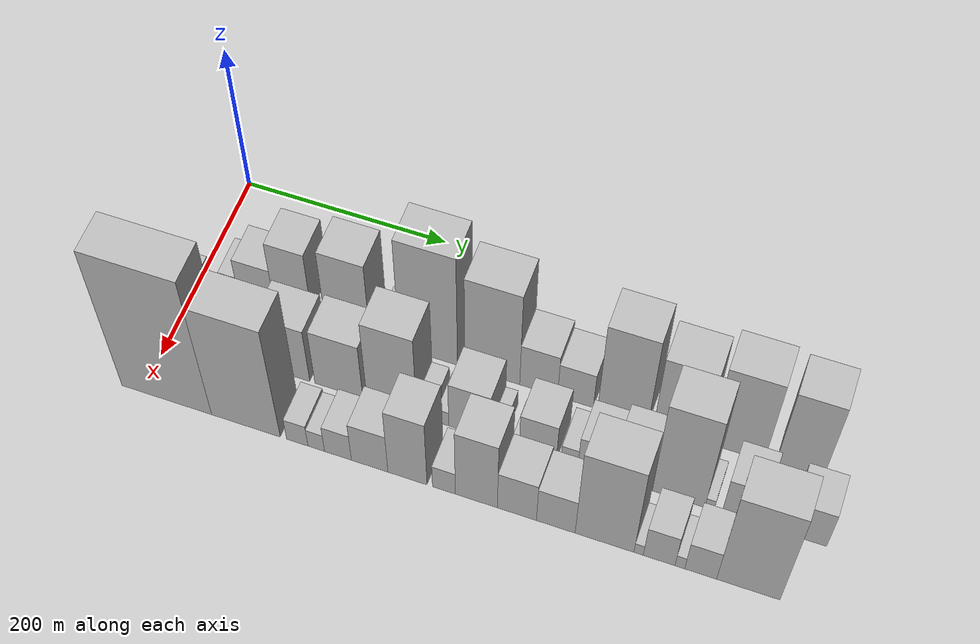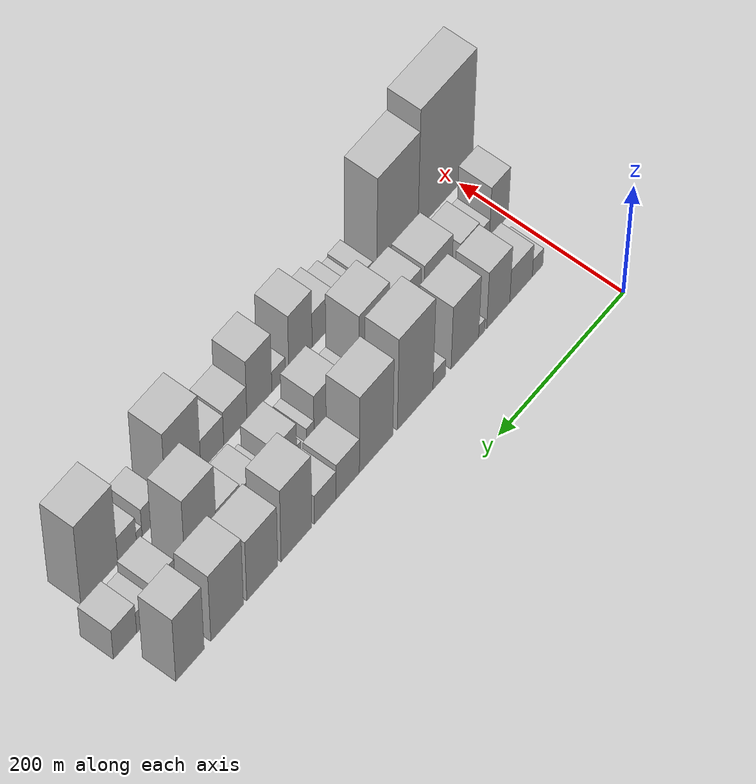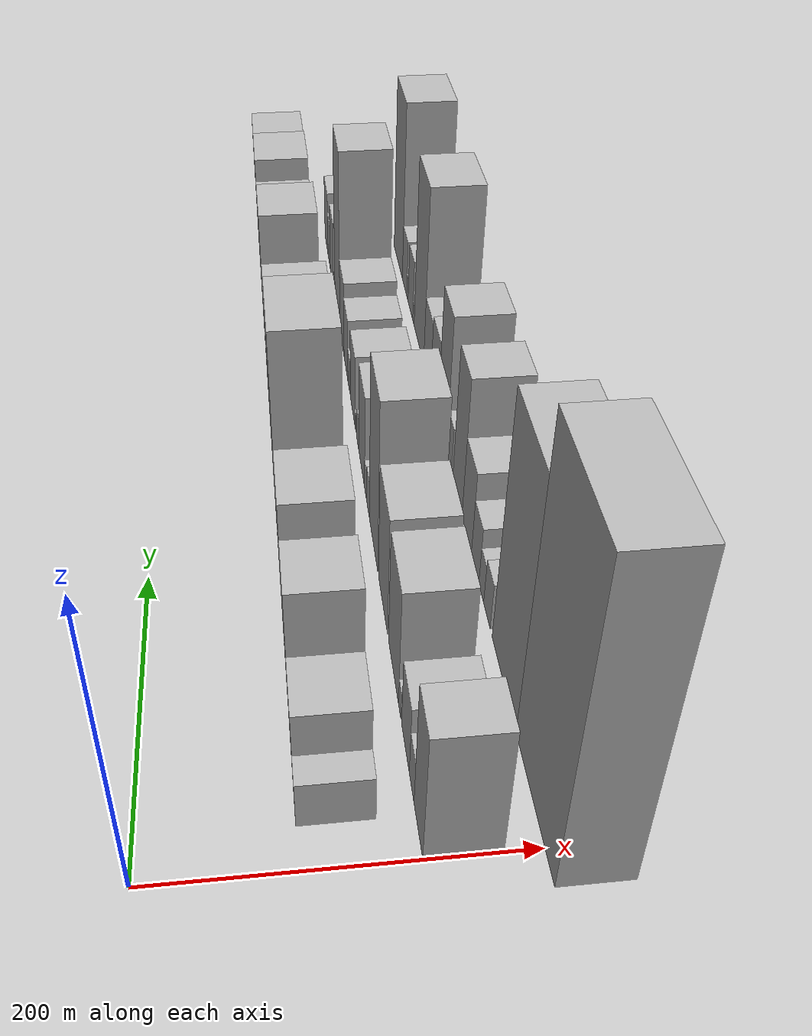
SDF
<sdf version="1.6">
 <world name="default">
  <model name="building_19">
   <static>1</static>
   <pose>100.0000 32.5690 0 0.000000 0.000000 0.000000</pose>
   <link name="link">
    <pose>0 0 16.50 0 0 0</pose>
    <collision name="collision"><geometry><box><size>40.0000 17.1172 33.0000</size></box></geometry></collision>
    <visual name="visual">
     <cast_shadows>0</cast_shadows>
     <geometry><box><size>40.0000 17.1172 33.0000</size></box></geometry>
     <material>
      <script>
       <uri>model://HANNAS_wall/materials/scripts</uri>
       <uri>model://HANNAS_wall/materials/textures</uri>
       <name>vrc/HANNAS_wall</name>
      </script>
     </material>
    </visual>
   </link>
  </model>
  <model name="building_20">
   <static>1</static>
   <pose>100.0000 59.2023 0 0.000000 0.000000 0.000000</pose>
   <link name="link">
    <pose>0 0 31.50 0 0 0</pose>
    <collision name="collision"><geometry><box><size>40.0000 36.1495 63.0000</size></box></geometry></collision>
    <visual name="visual">
     <cast_shadows>0</cast_shadows>
     <geometry><box><size>40.0000 36.1495 63.0000</size></box></geometry>
     <material>
      <script>
       <uri>model://HANNAS_wall/materials/scripts</uri>
       <uri>model://HANNAS_wall/materials/textures</uri>
       <name>vrc/HANNAS_wall</name>
      </script>
     </material>
    </visual>
   </link>
  </model>
  <model name="building_21">
   <static>1</static>
   <pose>100.0000 95.7717 0 0.000000 0.000000 0.000000</pose>
   <link name="link">
    <pose>0 0 54.00 0 0 0</pose>
    <collision name="collision"><geometry><box><size>40.0000 36.9893 108.0000</size></box></geometry></collision>
    <visual name="visual">
     <cast_shadows>0</cast_shadows>
     <geometry><box><size>40.0000 36.9893 108.0000</size></box></geometry>
     <material>
      <script>
       <uri>model://HANNAS_wall/materials/scripts</uri>
       <uri>model://HANNAS_wall/materials/textures</uri>
       <name>vrc/HANNAS_wall</name>
      </script>
     </material>
    </visual>
   </link>
  </model>
  <model name="building_22">
   <static>1</static>
   <pose>100.0000 122.1732 0 0.000000 0.000000 0.000000</pose>
   <link name="link">
    <pose>0 0 12.00 0 0 0</pose>
    <collision name="collision"><geometry><box><size>40.0000 9.8138 24.0000</size></box></geometry></collision>
    <visual name="visual">
     <cast_shadows>0</cast_shadows>
     <geometry><box><size>40.0000 9.8138 24.0000</size></box></geometry>
     <material>
      <script>
       <uri>model://HANNAS_wall/materials/scripts</uri>
       <uri>model://HANNAS_wall/materials/textures</uri>
       <name>vrc/HANNAS_wall</name>
      </script>
     </material>
    </visual>
   </link>
  </model>
  <model name="building_23">
   <static>1</static>
   <pose>100.0000 148.9118 0 0.000000 0.000000 0.000000</pose>
   <link name="link">
    <pose>0 0 60.00 0 0 0</pose>
    <collision name="collision"><geometry><box><size>40.0000 43.6633 120.0000</size></box></geometry></collision>
    <visual name="visual">
     <cast_shadows>0</cast_shadows>
     <geometry><box><size>40.0000 43.6633 120.0000</size></box></geometry>
     <material>
      <script>
       <uri>model://HANNAS_wall/materials/scripts</uri>
       <uri>model://HANNAS_wall/materials/textures</uri>
       <name>vrc/HANNAS_wall</name>
      </script>
     </material>
    </visual>
   </link>
  </model>
  <model name="building_24">
   <static>1</static>
   <pose>100.0000 189.5372 0 0.000000 0.000000 0.000000</pose>
   <link name="link">
    <pose>0 0 16.50 0 0 0</pose>
    <collision name="collision"><geometry><box><size>40.0000 19.5876 33.0000</size></box></geometry></collision>
    <visual name="visual">
     <cast_shadows>0</cast_shadows>
     <geometry><box><size>40.0000 19.5876 33.0000</size></box></geometry>
     <material>
      <script>
       <uri>model://HANNAS_wall/materials/scripts</uri>
       <uri>model://HANNAS_wall/materials/textures</uri>
       <name>vrc/HANNAS_wall</name>
      </script>
     </material>
    </visual>
   </link>
  </model>
  <model name="building_25">
   <static>1</static>
   <pose>100.0000 227.2445 0 0.000000 0.000000 0.000000</pose>
   <link name="link">
    <pose>0 0 88.50 0 0 0</pose>
    <collision name="collision"><geometry><box><size>40.0000 55.8271 177.0000</size></box></geometry></collision>
    <visual name="visual">
     <cast_shadows>0</cast_shadows>
     <geometry><box><size>40.0000 55.8271 177.0000</size></box></geometry>
     <material>
      <script>
       <uri>model://HANNAS_wall/materials/scripts</uri>
       <uri>model://HANNAS_wall/materials/textures</uri>
       <name>vrc/HANNAS_wall</name>
      </script>
     </material>
    </visual>
   </link>
  </model>
  <model name="building_26">
   <static>1</static>
   <pose>100.0000 288.1482 0 0.000000 0.000000 0.000000</pose>
   <link name="link">
    <pose>0 0 75.00 0 0 0</pose>
    <collision name="collision"><geometry><box><size>40.0000 51.9804 150.0000</size></box></geometry></collision>
    <visual name="visual">
     <cast_shadows>0</cast_shadows>
     <geometry><box><size>40.0000 51.9804 150.0000</size></box></geometry>
     <material>
      <script>
       <uri>model://HANNAS_wall/materials/scripts</uri>
       <uri>model://HANNAS_wall/materials/textures</uri>
       <name>vrc/HANNAS_wall</name>
      </script>
     </material>
    </visual>
   </link>
  </model>
  <model name="building_27">
   <static>1</static>
   <pose>100.0000 331.9754 0 0.000000 0.000000 0.000000</pose>
   <link name="link">
    <pose>0 0 34.50 0 0 0</pose>
    <collision name="collision"><geometry><box><size>40.0000 35.6739 69.0000</size></box></geometry></collision>
    <visual name="visual">
     <cast_shadows>0</cast_shadows>
     <geometry><box><size>40.0000 35.6739 69.0000</size></box></geometry>
     <material>
      <script>
       <uri>model://HANNAS_wall/materials/scripts</uri>
       <uri>model://HANNAS_wall/materials/textures</uri>
       <name>vrc/HANNAS_wall</name>
      </script>
     </material>
    </visual>
   </link>
  </model>
  <model name="building_28">
   <static>1</static>
   <pose>100.0000 366.4845 0 0.000000 0.000000 0.000000</pose>
   <link name="link">
    <pose>0 0 28.50 0 0 0</pose>
    <collision name="collision"><geometry><box><size>40.0000 33.3442 57.0000</size></box></geometry></collision>
    <visual name="visual">
     <cast_shadows>0</cast_shadows>
     <geometry><box><size>40.0000 33.3442 57.0000</size></box></geometry>
     <material>
      <script>
       <uri>model://HANNAS_wall/materials/scripts</uri>
       <uri>model://HANNAS_wall/materials/textures</uri>
       <name>vrc/HANNAS_wall</name>
      </script>
     </material>
    </visual>
   </link>
  </model>
  <model name="building_29">
   <static>1</static>
   <pose>100.0000 410.5144 0 0.000000 0.000000 0.000000</pose>
   <link name="link">
    <pose>0 0 72.00 0 0 0</pose>
    <collision name="collision"><geometry><box><size>40.0000 46.7158 144.0000</size></box></geometry></collision>
    <visual name="visual">
     <cast_shadows>0</cast_shadows>
     <geometry><box><size>40.0000 46.7158 144.0000</size></box></geometry>
     <material>
      <script>
       <uri>model://HANNAS_wall/materials/scripts</uri>
       <uri>model://HANNAS_wall/materials/textures</uri>
       <name>vrc/HANNAS_wall</name>
      </script>
     </material>
    </visual>
   </link>
  </model>
  <model name="building_30">
   <static>1</static>
   <pose>100.0000 462.2945 0 0.000000 0.000000 0.000000</pose>
   <link name="link">
    <pose>0 0 60.00 0 0 0</pose>
    <collision name="collision"><geometry><box><size>40.0000 46.8444 120.0000</size></box></geometry></collision>
    <visual name="visual">
     <cast_shadows>0</cast_shadows>
     <geometry><box><size>40.0000 46.8444 120.0000</size></box></geometry>
     <material>
      <script>
       <uri>model://HANNAS_wall/materials/scripts</uri>
       <uri>model://HANNAS_wall/materials/textures</uri>
       <name>vrc/HANNAS_wall</name>
      </script>
     </material>
    </visual>
   </link>
  </model>
  <model name="building_31">
   <static>1</static>
   <pose>100.0000 515.0531 0 0.000000 0.000000 0.000000</pose>
   <link name="link">
    <pose>0 0 67.50 0 0 0</pose>
    <collision name="collision"><geometry><box><size>40.0000 48.6727 135.0000</size></box></geometry></collision>
    <visual name="visual">
     <cast_shadows>0</cast_shadows>
     <geometry><box><size>40.0000 48.6727 135.0000</size></box></geometry>
     <material>
      <script>
       <uri>model://HANNAS_wall/materials/scripts</uri>
       <uri>model://HANNAS_wall/materials/textures</uri>
       <name>vrc/HANNAS_wall</name>
      </script>
     </material>
    </visual>
   </link>
  </model>
  <model name="building_32">
   <static>1</static>
   <pose>100.0000 570.4819 0 0.000000 0.000000 0.000000</pose>
   <link name="link">
    <pose>0 0 64.50 0 0 0</pose>
    <collision name="collision"><geometry><box><size>40.0000 42.1849 129.0000</size></box></geometry></collision>
    <visual name="visual">
     <cast_shadows>0</cast_shadows>
     <geometry><box><size>40.0000 42.1849 129.0000</size></box></geometry>
     <material>
      <script>
       <uri>model://HANNAS_wall/materials/scripts</uri>
       <uri>model://HANNAS_wall/materials/textures</uri>
       <name>vrc/HANNAS_wall</name>
      </script>
     </material>
    </visual>
   </link>
  </model>
  <model name="building_50">
   <static>1</static>
   <pose>160.0000 15.6681 0 0.000000 0.000000 0.000000</pose>
   <link name="link">
    <pose>0 0 46.50 0 0 0</pose>
    <collision name="collision"><geometry><box><size>40.0000 30.2656 93.0000</size></box></geometry></collision>
    <visual name="visual">
     <cast_shadows>0</cast_shadows>
     <geometry><box><size>40.0000 30.2656 93.0000</size></box></geometry>
     <material>
      <script>
       <uri>model://HANNAS_wall/materials/scripts</uri>
       <uri>model://HANNAS_wall/materials/textures</uri>
       <name>vrc/HANNAS_wall</name>
      </script>
     </material>
    </visual>
   </link>
  </model>
  <model name="building_51">
   <static>1</static>
   <pose>160.0000 39.5752 0 0.000000 0.000000 0.000000</pose>
   <link name="link">
    <pose>0 0 16.50 0 0 0</pose>
    <collision name="collision"><geometry><box><size>40.0000 17.5487 33.0000</size></box></geometry></collision>
    <visual name="visual">
     <cast_shadows>0</cast_shadows>
     <geometry><box><size>40.0000 17.5487 33.0000</size></box></geometry>
     <material>
      <script>
       <uri>model://HANNAS_wall/materials/scripts</uri>
       <uri>model://HANNAS_wall/materials/textures</uri>
       <name>vrc/HANNAS_wall</name>
      </script>
     </material>
    </visual>
   </link>
  </model>
  <model name="building_52">
   <static>1</static>
   <pose>160.0000 63.5712 0 0.000000 0.000000 0.000000</pose>
   <link name="link">
    <pose>0 0 25.50 0 0 0</pose>
    <collision name="collision"><geometry><box><size>40.0000 30.4431 51.0000</size></box></geometry></collision>
    <visual name="visual">
     <cast_shadows>0</cast_shadows>
     <geometry><box><size>40.0000 30.4431 51.0000</size></box></geometry>
     <material>
      <script>
       <uri>model://HANNAS_wall/materials/scripts</uri>
       <uri>model://HANNAS_wall/materials/textures</uri>
       <name>vrc/HANNAS_wall</name>
      </script>
     </material>
    </visual>
   </link>
  </model>
  <model name="building_53">
   <static>1</static>
   <pose>160.0000 86.6166 0 0.000000 0.000000 0.000000</pose>
   <link name="link">
    <pose>0 0 10.50 0 0 0</pose>
    <collision name="collision"><geometry><box><size>40.0000 9.6478 21.0000</size></box></geometry></collision>
    <visual name="visual">
     <cast_shadows>0</cast_shadows>
     <geometry><box><size>40.0000 9.6478 21.0000</size></box></geometry>
     <material>
      <script>
       <uri>model://HANNAS_wall/materials/scripts</uri>
       <uri>model://HANNAS_wall/materials/textures</uri>
       <name>vrc/HANNAS_wall</name>
      </script>
     </material>
    </visual>
   </link>
  </model>
  <model name="building_54">
   <static>1</static>
   <pose>160.0000 113.9087 0 0.000000 0.000000 0.000000</pose>
   <link name="link">
    <pose>0 0 43.50 0 0 0</pose>
    <collision name="collision"><geometry><box><size>40.0000 44.9363 87.0000</size></box></geometry></collision>
    <visual name="visual">
     <cast_shadows>0</cast_shadows>
     <geometry><box><size>40.0000 44.9363 87.0000</size></box></geometry>
     <material>
      <script>
       <uri>model://HANNAS_wall/materials/scripts</uri>
       <uri>model://HANNAS_wall/materials/textures</uri>
       <name>vrc/HANNAS_wall</name>
      </script>
     </material>
    </visual>
   </link>
  </model>
  <model name="building_55">
   <static>1</static>
   <pose>160.0000 164.3432 0 0.000000 0.000000 0.000000</pose>
   <link name="link">
    <pose>0 0 45.00 0 0 0</pose>
    <collision name="collision"><geometry><box><size>40.0000 45.9327 90.0000</size></box></geometry></collision>
    <visual name="visual">
     <cast_shadows>0</cast_shadows>
     <geometry><box><size>40.0000 45.9327 90.0000</size></box></geometry>
     <material>
      <script>
       <uri>model://HANNAS_wall/materials/scripts</uri>
       <uri>model://HANNAS_wall/materials/textures</uri>
       <name>vrc/HANNAS_wall</name>
      </script>
     </material>
    </visual>
   </link>
  </model>
  <model name="building_56">
   <static>1</static>
   <pose>160.0000 214.9504 0 0.000000 0.000000 0.000000</pose>
   <link name="link">
    <pose>0 0 66.00 0 0 0</pose>
    <collision name="collision"><geometry><box><size>40.0000 47.2818 132.0000</size></box></geometry></collision>
    <visual name="visual">
     <cast_shadows>0</cast_shadows>
     <geometry><box><size>40.0000 47.2818 132.0000</size></box></geometry>
     <material>
      <script>
       <uri>model://HANNAS_wall/materials/scripts</uri>
       <uri>model://HANNAS_wall/materials/textures</uri>
       <name>vrc/HANNAS_wall</name>
      </script>
     </material>
    </visual>
   </link>
  </model>
  <model name="building_57">
   <static>1</static>
   <pose>160.0000 246.8419 0 0.000000 0.000000 0.000000</pose>
   <link name="link">
    <pose>0 0 15.00 0 0 0</pose>
    <collision name="collision"><geometry><box><size>40.0000 16.5011 30.0000</size></box></geometry></collision>
    <visual name="visual">
     <cast_shadows>0</cast_shadows>
     <geometry><box><size>40.0000 16.5011 30.0000</size></box></geometry>
     <material>
      <script>
       <uri>model://HANNAS_wall/materials/scripts</uri>
       <uri>model://HANNAS_wall/materials/textures</uri>
       <name>vrc/HANNAS_wall</name>
      </script>
     </material>
    </visual>
   </link>
  </model>
  <model name="building_58">
   <static>1</static>
   <pose>160.0000 263.3674 0 0.000000 0.000000 0.000000</pose>
   <link name="link">
    <pose>0 0 12.00 0 0 0</pose>
    <collision name="collision"><geometry><box><size>40.0000 10.5499 24.0000</size></box></geometry></collision>
    <visual name="visual">
     <cast_shadows>0</cast_shadows>
     <geometry><box><size>40.0000 10.5499 24.0000</size></box></geometry>
     <material>
      <script>
       <uri>model://HANNAS_wall/materials/scripts</uri>
       <uri>model://HANNAS_wall/materials/textures</uri>
       <name>vrc/HANNAS_wall</name>
      </script>
     </material>
    </visual>
   </link>
  </model>
  <model name="building_59">
   <static>1</static>
   <pose>160.0000 288.1356 0 0.000000 0.000000 0.000000</pose>
   <link name="link">
    <pose>0 0 37.50 0 0 0</pose>
    <collision name="collision"><geometry><box><size>40.0000 38.9865 75.0000</size></box></geometry></collision>
    <visual name="visual">
     <cast_shadows>0</cast_shadows>
     <geometry><box><size>40.0000 38.9865 75.0000</size></box></geometry>
     <material>
      <script>
       <uri>model://HANNAS_wall/materials/scripts</uri>
       <uri>model://HANNAS_wall/materials/textures</uri>
       <name>vrc/HANNAS_wall</name>
      </script>
     </material>
    </visual>
   </link>
  </model>
  <model name="building_60">
   <static>1</static>
   <pose>160.0000 313.4421 0 0.000000 0.000000 0.000000</pose>
   <link name="link">
    <pose>0 0 13.50 0 0 0</pose>
    <collision name="collision"><geometry><box><size>40.0000 11.6265 27.0000</size></box></geometry></collision>
    <visual name="visual">
     <cast_shadows>0</cast_shadows>
     <geometry><box><size>40.0000 11.6265 27.0000</size></box></geometry>
     <material>
      <script>
       <uri>model://HANNAS_wall/materials/scripts</uri>
       <uri>model://HANNAS_wall/materials/textures</uri>
       <name>vrc/HANNAS_wall</name>
      </script>
     </material>
    </visual>
   </link>
  </model>
  <model name="building_61">
   <static>1</static>
   <pose>160.0000 330.7236 0 0.000000 0.000000 0.000000</pose>
   <link name="link">
    <pose>0 0 7.50 0 0 0</pose>
    <collision name="collision"><geometry><box><size>40.0000 6.9365 15.0000</size></box></geometry></collision>
    <visual name="visual">
     <cast_shadows>0</cast_shadows>
     <geometry><box><size>40.0000 6.9365 15.0000</size></box></geometry>
     <material>
      <script>
       <uri>model://HANNAS_wall/materials/scripts</uri>
       <uri>model://HANNAS_wall/materials/textures</uri>
       <name>vrc/HANNAS_wall</name>
      </script>
     </material>
    </visual>
   </link>
  </model>
  <model name="building_62">
   <static>1</static>
   <pose>160.0000 351.3581 0 0.000000 0.000000 0.000000</pose>
   <link name="link">
    <pose>0 0 30.00 0 0 0</pose>
    <collision name="collision"><geometry><box><size>40.0000 34.3325 60.0000</size></box></geometry></collision>
    <visual name="visual">
     <cast_shadows>0</cast_shadows>
     <geometry><box><size>40.0000 34.3325 60.0000</size></box></geometry>
     <material>
      <script>
       <uri>model://HANNAS_wall/materials/scripts</uri>
       <uri>model://HANNAS_wall/materials/textures</uri>
       <name>vrc/HANNAS_wall</name>
      </script>
     </material>
    </visual>
   </link>
  </model>
  <model name="building_63">
   <static>1</static>
   <pose>160.0000 380.3393 0 0.000000 0.000000 0.000000</pose>
   <link name="link">
    <pose>0 0 15.00 0 0 0</pose>
    <collision name="collision"><geometry><box><size>40.0000 15.6299 30.0000</size></box></geometry></collision>
    <visual name="visual">
     <cast_shadows>0</cast_shadows>
     <geometry><box><size>40.0000 15.6299 30.0000</size></box></geometry>
     <material>
      <script>
       <uri>model://HANNAS_wall/materials/scripts</uri>
       <uri>model://HANNAS_wall/materials/textures</uri>
       <name>vrc/HANNAS_wall</name>
      </script>
     </material>
    </visual>
   </link>
  </model>
  <model name="building_64">
   <static>1</static>
   <pose>160.0000 404.0809 0 0.000000 0.000000 0.000000</pose>
   <link name="link">
    <pose>0 0 27.00 0 0 0</pose>
    <collision name="collision"><geometry><box><size>40.0000 31.8532 54.0000</size></box></geometry></collision>
    <visual name="visual">
     <cast_shadows>0</cast_shadows>
     <geometry><box><size>40.0000 31.8532 54.0000</size></box></geometry>
     <material>
      <script>
       <uri>model://HANNAS_wall/materials/scripts</uri>
       <uri>model://HANNAS_wall/materials/textures</uri>
       <name>vrc/HANNAS_wall</name>
      </script>
     </material>
    </visual>
   </link>
  </model>
  <model name="building_65">
   <static>1</static>
   <pose>160.0000 437.7997 0 0.000000 0.000000 0.000000</pose>
   <link name="link">
    <pose>0 0 33.00 0 0 0</pose>
    <collision name="collision"><geometry><box><size>40.0000 35.5845 66.0000</size></box></geometry></collision>
    <visual name="visual">
     <cast_shadows>0</cast_shadows>
     <geometry><box><size>40.0000 35.5845 66.0000</size></box></geometry>
     <material>
      <script>
       <uri>model://HANNAS_wall/materials/scripts</uri>
       <uri>model://HANNAS_wall/materials/textures</uri>
       <name>vrc/HANNAS_wall</name>
      </script>
     </material>
    </visual>
   </link>
  </model>
  <model name="building_66">
   <static>1</static>
   <pose>160.0000 479.1199 0 0.000000 0.000000 0.000000</pose>
   <link name="link">
    <pose>0 0 78.00 0 0 0</pose>
    <collision name="collision"><geometry><box><size>40.0000 47.0559 156.0000</size></box></geometry></collision>
    <visual name="visual">
     <cast_shadows>0</cast_shadows>
     <geometry><box><size>40.0000 47.0559 156.0000</size></box></geometry>
     <material>
      <script>
       <uri>model://HANNAS_wall/materials/scripts</uri>
       <uri>model://HANNAS_wall/materials/textures</uri>
       <name>vrc/HANNAS_wall</name>
      </script>
     </material>
    </visual>
   </link>
  </model>
  <model name="building_67">
   <static>1</static>
   <pose>160.0000 506.7438 0 0.000000 0.000000 0.000000</pose>
   <link name="link">
    <pose>0 0 9.00 0 0 0</pose>
    <collision name="collision"><geometry><box><size>40.0000 8.1918 18.0000</size></box></geometry></collision>
    <visual name="visual">
     <cast_shadows>0</cast_shadows>
     <geometry><box><size>40.0000 8.1918 18.0000</size></box></geometry>
     <material>
      <script>
       <uri>model://HANNAS_wall/materials/scripts</uri>
       <uri>model://HANNAS_wall/materials/textures</uri>
       <name>vrc/HANNAS_wall</name>
      </script>
     </material>
    </visual>
   </link>
  </model>
  <model name="building_68">
   <static>1</static>
   <pose>160.0000 534.8075 0 0.000000 0.000000 0.000000</pose>
   <link name="link">
    <pose>0 0 31.50 0 0 0</pose>
    <collision name="collision"><geometry><box><size>40.0000 33.9355 63.0000</size></box></geometry></collision>
    <visual name="visual">
     <cast_shadows>0</cast_shadows>
     <geometry><box><size>40.0000 33.9355 63.0000</size></box></geometry>
     <material>
      <script>
       <uri>model://HANNAS_wall/materials/scripts</uri>
       <uri>model://HANNAS_wall/materials/textures</uri>
       <name>vrc/HANNAS_wall</name>
      </script>
     </material>
    </visual>
   </link>
  </model>
  <model name="building_69">
   <static>1</static>
   <pose>160.0000 563.5913 0 0.000000 0.000000 0.000000</pose>
   <link name="link">
    <pose>0 0 21.00 0 0 0</pose>
    <collision name="collision"><geometry><box><size>40.0000 23.6321 42.0000</size></box></geometry></collision>
    <visual name="visual">
     <cast_shadows>0</cast_shadows>
     <geometry><box><size>40.0000 23.6321 42.0000</size></box></geometry>
     <material>
      <script>
       <uri>model://HANNAS_wall/materials/scripts</uri>
       <uri>model://HANNAS_wall/materials/textures</uri>
       <name>vrc/HANNAS_wall</name>
      </script>
     </material>
    </visual>
   </link>
  </model>
  <model name="building_70">
   <static>1</static>
   <pose>160.0000 592.6314 0 0.000000 0.000000 0.000000</pose>
   <link name="link">
    <pose>0 0 30.00 0 0 0</pose>
    <collision name="collision"><geometry><box><size>40.0000 34.4482 60.0000</size></box></geometry></collision>
    <visual name="visual">
     <cast_shadows>0</cast_shadows>
     <geometry><box><size>40.0000 34.4482 60.0000</size></box></geometry>
     <material>
      <script>
       <uri>model://HANNAS_wall/materials/scripts</uri>
       <uri>model://HANNAS_wall/materials/textures</uri>
       <name>vrc/HANNAS_wall</name>
      </script>
     </material>
    </visual>
   </link>
  </model>
  <model name="building_88">
   <static>1</static>
   <pose>220.0000 23.6230 0 0.000000 0.000000 0.000000</pose>
   <link name="link">
    <pose>0 0 111.00 0 0 0</pose>
    <collision name="collision"><geometry><box><size>40.0000 87.2723 222.0000</size></box></geometry></collision>
    <visual name="visual">
     <cast_shadows>0</cast_shadows>
     <geometry><box><size>40.0000 87.2723 222.0000</size></box></geometry>
     <material>
      <script>
       <uri>model://HANNAS_wall/materials/scripts</uri>
       <uri>model://HANNAS_wall/materials/textures</uri>
       <name>vrc/HANNAS_wall</name>
      </script>
     </material>
    </visual>
   </link>
  </model>
  <model name="building_89">
   <static>1</static>
   <pose>220.0000 100.1741 0 0.000000 0.000000 0.000000</pose>
   <link name="link">
    <pose>0 0 91.50 0 0 0</pose>
    <collision name="collision"><geometry><box><size>40.0000 65.8298 183.0000</size></box></geometry></collision>
    <visual name="visual">
     <cast_shadows>0</cast_shadows>
     <geometry><box><size>40.0000 65.8298 183.0000</size></box></geometry>
     <material>
      <script>
       <uri>model://HANNAS_wall/materials/scripts</uri>
       <uri>model://HANNAS_wall/materials/textures</uri>
       <name>vrc/HANNAS_wall</name>
      </script>
     </material>
    </visual>
   </link>
  </model>
  <model name="building_90">
   <static>1</static>
   <pose>220.0000 149.2088 0 0.000000 0.000000 0.000000</pose>
   <link name="link">
    <pose>0 0 18.00 0 0 0</pose>
    <collision name="collision"><geometry><box><size>40.0000 20.2397 36.0000</size></box></geometry></collision>
    <visual name="visual">
     <cast_shadows>0</cast_shadows>
     <geometry><box><size>40.0000 20.2397 36.0000</size></box></geometry>
     <material>
      <script>
       <uri>model://HANNAS_wall/materials/scripts</uri>
       <uri>model://HANNAS_wall/materials/textures</uri>
       <name>vrc/HANNAS_wall</name>
      </script>
     </material>
    </visual>
   </link>
  </model>
  <model name="building_91">
   <static>1</static>
   <pose>220.0000 167.1469 0 0.000000 0.000000 0.000000</pose>
   <link name="link">
    <pose>0 0 15.00 0 0 0</pose>
    <collision name="collision"><geometry><box><size>40.0000 15.6365 30.0000</size></box></geometry></collision>
    <visual name="visual">
     <cast_shadows>0</cast_shadows>
     <geometry><box><size>40.0000 15.6365 30.0000</size></box></geometry>
     <material>
      <script>
       <uri>model://HANNAS_wall/materials/scripts</uri>
       <uri>model://HANNAS_wall/materials/textures</uri>
       <name>vrc/HANNAS_wall</name>
      </script>
     </material>
    </visual>
   </link>
  </model>
  <model name="building_92">
   <static>1</static>
   <pose>220.0000 187.6049 0 0.000000 0.000000 0.000000</pose>
   <link name="link">
    <pose>0 0 22.50 0 0 0</pose>
    <collision name="collision"><geometry><box><size>40.0000 25.2794 45.0000</size></box></geometry></collision>
    <visual name="visual">
     <cast_shadows>0</cast_shadows>
     <geometry><box><size>40.0000 25.2794 45.0000</size></box></geometry>
     <material>
      <script>
       <uri>model://HANNAS_wall/materials/scripts</uri>
       <uri>model://HANNAS_wall/materials/textures</uri>
       <name>vrc/HANNAS_wall</name>
      </script>
     </material>
    </visual>
   </link>
  </model>
  <model name="building_93">
   <static>1</static>
   <pose>220.0000 217.2761 0 0.000000 0.000000 0.000000</pose>
   <link name="link">
    <pose>0 0 33.00 0 0 0</pose>
    <collision name="collision"><geometry><box><size>40.0000 34.0630 66.0000</size></box></geometry></collision>
    <visual name="visual">
     <cast_shadows>0</cast_shadows>
     <geometry><box><size>40.0000 34.0630 66.0000</size></box></geometry>
     <material>
      <script>
       <uri>model://HANNAS_wall/materials/scripts</uri>
       <uri>model://HANNAS_wall/materials/textures</uri>
       <name>vrc/HANNAS_wall</name>
      </script>
     </material>
    </visual>
   </link>
  </model>
  <model name="building_94">
   <static>1</static>
   <pose>220.0000 252.4501 0 0.000000 0.000000 0.000000</pose>
   <link name="link">
    <pose>0 0 55.50 0 0 0</pose>
    <collision name="collision"><geometry><box><size>40.0000 36.2849 111.0000</size></box></geometry></collision>
    <visual name="visual">
     <cast_shadows>0</cast_shadows>
     <geometry><box><size>40.0000 36.2849 111.0000</size></box></geometry>
     <material>
      <script>
       <uri>model://HANNAS_wall/materials/scripts</uri>
       <uri>model://HANNAS_wall/materials/textures</uri>
       <name>vrc/HANNAS_wall</name>
      </script>
     </material>
    </visual>
   </link>
  </model>
  <model name="building_95">
   <static>1</static>
   <pose>220.0000 286.1060 0 0.000000 0.000000 0.000000</pose>
   <link name="link">
    <pose>0 0 19.50 0 0 0</pose>
    <collision name="collision"><geometry><box><size>40.0000 21.0269 39.0000</size></box></geometry></collision>
    <visual name="visual">
     <cast_shadows>0</cast_shadows>
     <geometry><box><size>40.0000 21.0269 39.0000</size></box></geometry>
     <material>
      <script>
       <uri>model://HANNAS_wall/materials/scripts</uri>
       <uri>model://HANNAS_wall/materials/textures</uri>
       <name>vrc/HANNAS_wall</name>
      </script>
     </material>
    </visual>
   </link>
  </model>
  <model name="building_96">
   <static>1</static>
   <pose>220.0000 315.7752 0 0.000000 0.000000 0.000000</pose>
   <link name="link">
    <pose>0 0 57.00 0 0 0</pose>
    <collision name="collision"><geometry><box><size>40.0000 38.3116 114.0000</size></box></geometry></collision>
    <visual name="visual">
     <cast_shadows>0</cast_shadows>
     <geometry><box><size>40.0000 38.3116 114.0000</size></box></geometry>
     <material>
      <script>
       <uri>model://HANNAS_wall/materials/scripts</uri>
       <uri>model://HANNAS_wall/materials/textures</uri>
       <name>vrc/HANNAS_wall</name>
      </script>
     </material>
    </visual>
   </link>
  </model>
  <model name="building_97">
   <static>1</static>
   <pose>220.0000 352.6115 0 0.000000 0.000000 0.000000</pose>
   <link name="link">
    <pose>0 0 33.00 0 0 0</pose>
    <collision name="collision"><geometry><box><size>40.0000 35.3610 66.0000</size></box></geometry></collision>
    <visual name="visual">
     <cast_shadows>0</cast_shadows>
     <geometry><box><size>40.0000 35.3610 66.0000</size></box></geometry>
     <material>
      <script>
       <uri>model://HANNAS_wall/materials/scripts</uri>
       <uri>model://HANNAS_wall/materials/textures</uri>
       <name>vrc/HANNAS_wall</name>
      </script>
     </material>
    </visual>
   </link>
  </model>
  <model name="building_98">
   <static>1</static>
   <pose>220.0000 387.6585 0 0.000000 0.000000 0.000000</pose>
   <link name="link">
    <pose>0 0 30.00 0 0 0</pose>
    <collision name="collision"><geometry><box><size>40.0000 34.7330 60.0000</size></box></geometry></collision>
    <visual name="visual">
     <cast_shadows>0</cast_shadows>
     <geometry><box><size>40.0000 34.7330 60.0000</size></box></geometry>
     <material>
      <script>
       <uri>model://HANNAS_wall/materials/scripts</uri>
       <uri>model://HANNAS_wall/materials/textures</uri>
       <name>vrc/HANNAS_wall</name>
      </script>
     </material>
    </visual>
   </link>
  </model>
  <model name="building_99">
   <static>1</static>
   <pose>220.0000 431.2219 0 0.000000 0.000000 0.000000</pose>
   <link name="link">
    <pose>0 0 75.00 0 0 0</pose>
    <collision name="collision"><geometry><box><size>40.0000 52.3939 150.0000</size></box></geometry></collision>
    <visual name="visual">
     <cast_shadows>0</cast_shadows>
     <geometry><box><size>40.0000 52.3939 150.0000</size></box></geometry>
     <material>
      <script>
       <uri>model://HANNAS_wall/materials/scripts</uri>
       <uri>model://HANNAS_wall/materials/textures</uri>
       <name>vrc/HANNAS_wall</name>
      </script>
     </material>
    </visual>
   </link>
  </model>
  <model name="building_100">
   <static>1</static>
   <pose>220.0000 461.5253 0 0.000000 0.000000 0.000000</pose>
   <link name="link">
    <pose>0 0 9.00 0 0 0</pose>
    <collision name="collision"><geometry><box><size>40.0000 8.2129 18.0000</size></box></geometry></collision>
    <visual name="visual">
     <cast_shadows>0</cast_shadows>
     <geometry><box><size>40.0000 8.2129 18.0000</size></box></geometry>
     <material>
      <script>
       <uri>model://HANNAS_wall/materials/scripts</uri>
       <uri>model://HANNAS_wall/materials/textures</uri>
       <name>vrc/HANNAS_wall</name>
      </script>
     </material>
    </visual>
   </link>
  </model>
  <model name="building_101">
   <static>1</static>
   <pose>220.0000 479.5971 0 0.000000 0.000000 0.000000</pose>
   <link name="link">
    <pose>0 0 27.00 0 0 0</pose>
    <collision name="collision"><geometry><box><size>40.0000 27.9307 54.0000</size></box></geometry></collision>
    <visual name="visual">
     <cast_shadows>0</cast_shadows>
     <geometry><box><size>40.0000 27.9307 54.0000</size></box></geometry>
     <material>
      <script>
       <uri>model://HANNAS_wall/materials/scripts</uri>
       <uri>model://HANNAS_wall/materials/textures</uri>
       <name>vrc/HANNAS_wall</name>
      </script>
     </material>
    </visual>
   </link>
  </model>
  <model name="building_102">
   <static>1</static>
   <pose>220.0000 497.8129 0 0.000000 0.000000 0.000000</pose>
   <link name="link">
    <pose>0 0 10.50 0 0 0</pose>
    <collision name="collision"><geometry><box><size>40.0000 8.5009 21.0000</size></box></geometry></collision>
    <visual name="visual">
     <cast_shadows>0</cast_shadows>
     <geometry><box><size>40.0000 8.5009 21.0000</size></box></geometry>
     <material>
      <script>
       <uri>model://HANNAS_wall/materials/scripts</uri>
       <uri>model://HANNAS_wall/materials/textures</uri>
       <name>vrc/HANNAS_wall</name>
      </script>
     </material>
    </visual>
   </link>
  </model>
  <model name="building_103">
   <static>1</static>
   <pose>220.0000 515.9524 0 0.000000 0.000000 0.000000</pose>
   <link name="link">
    <pose>0 0 25.50 0 0 0</pose>
    <collision name="collision"><geometry><box><size>40.0000 27.7781 51.0000</size></box></geometry></collision>
    <visual name="visual">
     <cast_shadows>0</cast_shadows>
     <geometry><box><size>40.0000 27.7781 51.0000</size></box></geometry>
     <material>
      <script>
       <uri>model://HANNAS_wall/materials/scripts</uri>
       <uri>model://HANNAS_wall/materials/textures</uri>
       <name>vrc/HANNAS_wall</name>
      </script>
     </material>
    </visual>
   </link>
  </model>
  <model name="building_104">
   <static>1</static>
   <pose>220.0000 557.2899 0 0.000000 0.000000 0.000000</pose>
   <link name="link">
    <pose>0 0 79.50 0 0 0</pose>
    <collision name="collision"><geometry><box><size>40.0000 54.8968 159.0000</size></box></geometry></collision>
    <visual name="visual">
     <cast_shadows>0</cast_shadows>
     <geometry><box><size>40.0000 54.8968 159.0000</size></box></geometry>
     <material>
      <script>
       <uri>model://HANNAS_wall/materials/scripts</uri>
       <uri>model://HANNAS_wall/materials/textures</uri>
       <name>vrc/HANNAS_wall</name>
      </script>
     </material>
    </visual>
   </link>
  </model>
 </world>
</sdf>
